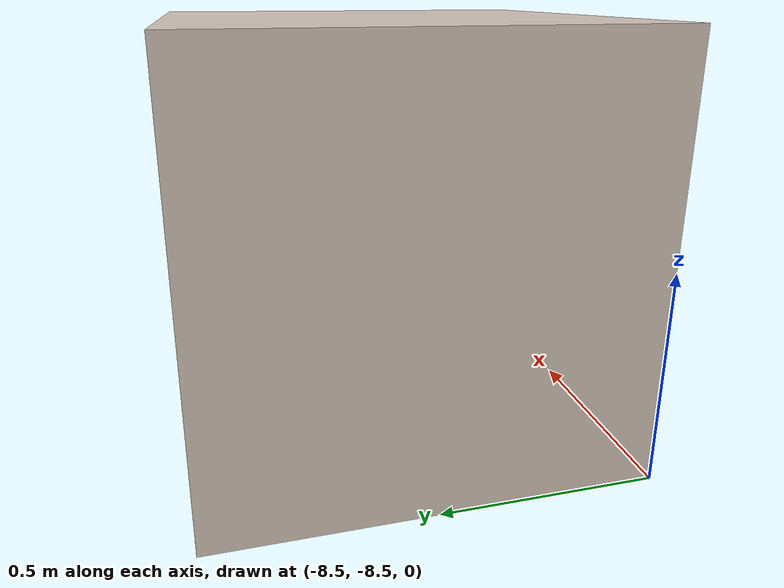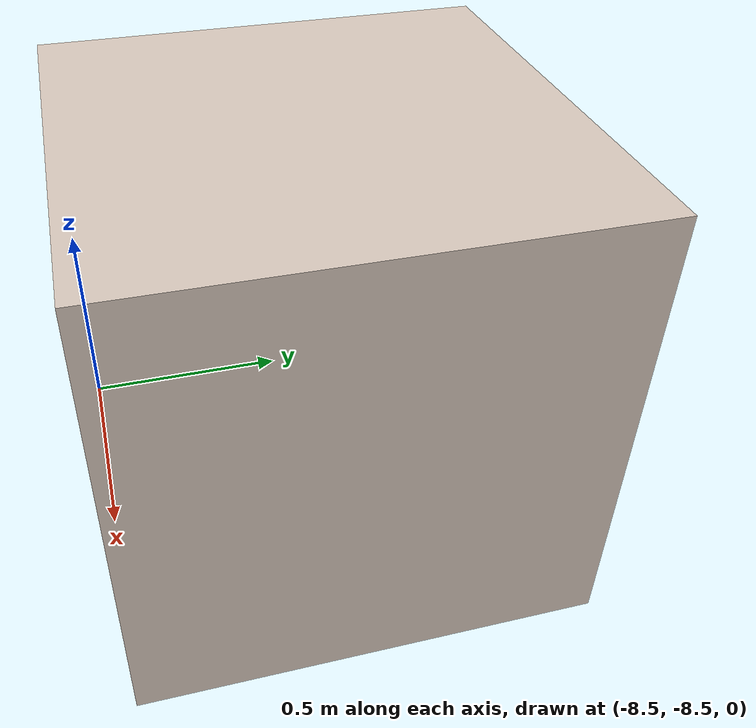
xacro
<?xml version="1.0" ?>
<robot name="world" xmlns:xacro="http://www.ros.org/wiki/xacro">

  <material name="brown">
    <color rgba="0.870588235294 0.811764705882 0.764705882353 1.0"/>
  </material>

  <gazebo reference="wall">
    <material>Gazebo/brown</material>
  </gazebo>

  <link name="box0">
    <!-- pose and inertial -->
    <pose>0 0 0 0 0 0</pose>
    <inertial>
      <mass value="5"/>
      <origin rpy="0 0 0" xyz="-8 -8 0.5"/>
      <inertia ixx="1" ixy="0" ixz="0" iyy="1" iyz="0" izz="1"/>
    </inertial>
    <!-- body -->
    <collision name="collision_box">
      <geometry>
        <box size="1 1 1"/>
      </geometry>
    </collision>
    <visual>
      <origin rpy="0 0 0" xyz="-8 -8 0.5"/>
      <geometry>
        <box size="1 1 1"/>
      </geometry>
      <material name="brown"/>
    </visual>

  </link>

</robot>
